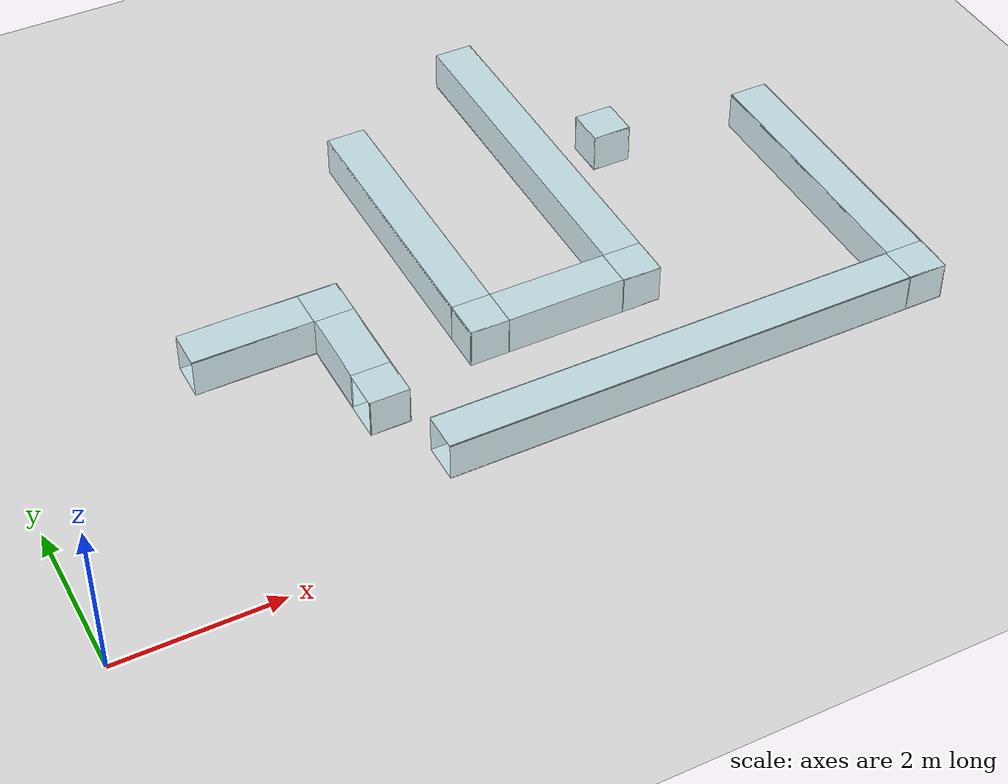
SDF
<sdf version="1.8">
 <world name="demo">
  <model name="ground_plane">
   <static>true</static>
   <link name="link">
    <collision name="collision">
     <geometry><plane><normal>0 0 1</normal><size>100 100</size></plane></geometry>
    </collision>
    <visual name="visual">
     <geometry><plane><normal>0 0 1</normal><size>100 100</size></plane></geometry>
     <material>
      <ambient>0.8 0.8 0.8 1</ambient>
      <diffuse>0.8 0.8 0.8 1</diffuse>
      <specular>0.8 0.8 0.8 1</specular>
     </material>
    </visual>
   </link>
  </model>
  <model name="ground_plane">
   <static>true</static>
   <link name="link">
    <collision name="collision">
     <geometry><plane><normal>0 0 1</normal><size>100 100</size></plane></geometry>
    </collision>
    <visual name="visual">
     <geometry><plane><normal>0 0 1</normal><size>100 100</size></plane></geometry>
     <material>
      <ambient>0.6 0.85 0.9 0.4</ambient>
      <diffuse>0.6 0.85 0.9 0.4</diffuse>
      <specular>0.1 0.1 0.1 1</specular>
      <emissive>0 0 0 1</emissive>
     </material>
    </visual>
   </link>
  </model>
  <model name="T4">
   <pose>4.000000 2.750000 0.250000 0.000000 0.000000 0.000000</pose>
   <static>true</static>
   <link name="link">
    <collision name="col_side_posX">
     <pose>0.245000 0.000000 0.000000 0.000000 0.000000 0.000000</pose>
     <geometry><box><size>0.010000 1.000000 0.500000</size></box></geometry>
    </collision>
    <visual name="vis_col_side_posX">
     <pose>0.245000 0.000000 0.000000 0.000000 0.000000 0.000000</pose>
     <geometry><box><size>0.010000 1.000000 0.500000</size></box></geometry>
     <material>
      <ambient>0.6 0.85 0.9 0.4</ambient>
      <diffuse>0.6 0.85 0.9 0.4</diffuse>
      <specular>0.1 0.1 0.1 1</specular>
      <emissive>0 0 0 1</emissive>
     </material>
    </visual>
    <collision name="col_side_negX">
     <pose>-0.245000 0.000000 0.000000 0.000000 0.000000 0.000000</pose>
     <geometry><box><size>0.010000 1.000000 0.500000</size></box></geometry>
    </collision>
    <visual name="vis_col_side_negX">
     <pose>-0.245000 0.000000 0.000000 0.000000 0.000000 0.000000</pose>
     <geometry><box><size>0.010000 1.000000 0.500000</size></box></geometry>
     <material>
      <ambient>0.6 0.85 0.9 0.4</ambient>
      <diffuse>0.6 0.85 0.9 0.4</diffuse>
      <specular>0.1 0.1 0.1 1</specular>
      <emissive>0 0 0 1</emissive>
     </material>
    </visual>
    <collision name="col_top">
     <pose>0.000000 0.000000 0.245000 0.000000 0.000000 0.000000</pose>
     <geometry><box><size>0.500000 1.000000 0.010000</size></box></geometry>
    </collision>
    <visual name="vis_col_top">
     <pose>0.000000 0.000000 0.245000 0.000000 0.000000 0.000000</pose>
     <geometry><box><size>0.500000 1.000000 0.010000</size></box></geometry>
     <material>
      <ambient>0.6 0.85 0.9 0.4</ambient>
      <diffuse>0.6 0.85 0.9 0.4</diffuse>
      <specular>0.1 0.1 0.1 1</specular>
      <emissive>0 0 0 1</emissive>
     </material>
    </visual>
    <collision name="col_bottom">
     <pose>0.000000 0.000000 -0.245000 0.000000 0.000000 0.000000</pose>
     <geometry><box><size>0.500000 1.000000 0.010000</size></box></geometry>
    </collision>
    <visual name="vis_col_bottom">
     <pose>0.000000 0.000000 -0.245000 0.000000 0.000000 0.000000</pose>
     <geometry><box><size>0.500000 1.000000 0.010000</size></box></geometry>
     <material>
      <ambient>0.6 0.85 0.9 0.4</ambient>
      <diffuse>0.6 0.85 0.9 0.4</diffuse>
      <specular>0.1 0.1 0.1 1</specular>
      <emissive>0 0 0 1</emissive>
     </material>
    </visual>
   </link>
  </model>
  <model name="T5">
   <pose>3.000000 3.500000 0.250000 0.000000 0.000000 0.000000</pose>
   <static>true</static>
   <link name="link">
    <collision name="col_side_posY">
     <pose>0.000000 0.245000 0.000000 0.000000 0.000000 0.000000</pose>
     <geometry><box><size>1.500000 0.010000 0.500000</size></box></geometry>
    </collision>
    <visual name="vis_col_side_posY">
     <pose>0.000000 0.245000 0.000000 0.000000 0.000000 0.000000</pose>
     <geometry><box><size>1.500000 0.010000 0.500000</size></box></geometry>
     <material>
      <ambient>0.6 0.85 0.9 0.4</ambient>
      <diffuse>0.6 0.85 0.9 0.4</diffuse>
      <specular>0.1 0.1 0.1 1</specular>
      <emissive>0 0 0 1</emissive>
     </material>
    </visual>
    <collision name="col_side_negY">
     <pose>0.000000 -0.245000 0.000000 0.000000 0.000000 0.000000</pose>
     <geometry><box><size>1.500000 0.010000 0.500000</size></box></geometry>
    </collision>
    <visual name="vis_col_side_negY">
     <pose>0.000000 -0.245000 0.000000 0.000000 0.000000 0.000000</pose>
     <geometry><box><size>1.500000 0.010000 0.500000</size></box></geometry>
     <material>
      <ambient>0.6 0.85 0.9 0.4</ambient>
      <diffuse>0.6 0.85 0.9 0.4</diffuse>
      <specular>0.1 0.1 0.1 1</specular>
      <emissive>0 0 0 1</emissive>
     </material>
    </visual>
    <collision name="col_top">
     <pose>0.000000 0.000000 0.245000 0.000000 0.000000 0.000000</pose>
     <geometry><box><size>1.500000 0.500000 0.010000</size></box></geometry>
    </collision>
    <visual name="vis_col_top">
     <pose>0.000000 0.000000 0.245000 0.000000 0.000000 0.000000</pose>
     <geometry><box><size>1.500000 0.500000 0.010000</size></box></geometry>
     <material>
      <ambient>0.6 0.85 0.9 0.4</ambient>
      <diffuse>0.6 0.85 0.9 0.4</diffuse>
      <specular>0.1 0.1 0.1 1</specular>
      <emissive>0 0 0 1</emissive>
     </material>
    </visual>
    <collision name="col_bottom">
     <pose>0.000000 0.000000 -0.245000 0.000000 0.000000 0.000000</pose>
     <geometry><box><size>1.500000 0.500000 0.010000</size></box></geometry>
    </collision>
    <visual name="vis_col_bottom">
     <pose>0.000000 0.000000 -0.245000 0.000000 0.000000 0.000000</pose>
     <geometry><box><size>1.500000 0.500000 0.010000</size></box></geometry>
     <material>
      <ambient>0.6 0.85 0.9 0.4</ambient>
      <diffuse>0.6 0.85 0.9 0.4</diffuse>
      <specular>0.1 0.1 0.1 1</specular>
      <emissive>0 0 0 1</emissive>
     </material>
    </visual>
   </link>
  </model>
  <model name="T16">
   <pose>5.500000 4.500000 0.250000 0.000000 0.000000 0.000000</pose>
   <static>true</static>
   <link name="link">
    <collision name="col_side_posX">
     <pose>0.245000 0.000000 0.000000 0.000000 0.000000 0.000000</pose>
     <geometry><box><size>0.010000 3.500000 0.500000</size></box></geometry>
    </collision>
    <visual name="vis_col_side_posX">
     <pose>0.245000 0.000000 0.000000 0.000000 0.000000 0.000000</pose>
     <geometry><box><size>0.010000 3.500000 0.500000</size></box></geometry>
     <material>
      <ambient>0.6 0.85 0.9 0.4</ambient>
      <diffuse>0.6 0.85 0.9 0.4</diffuse>
      <specular>0.1 0.1 0.1 1</specular>
      <emissive>0 0 0 1</emissive>
     </material>
    </visual>
    <collision name="col_side_negX">
     <pose>-0.245000 0.000000 0.000000 0.000000 0.000000 0.000000</pose>
     <geometry><box><size>0.010000 3.500000 0.500000</size></box></geometry>
    </collision>
    <visual name="vis_col_side_negX">
     <pose>-0.245000 0.000000 0.000000 0.000000 0.000000 0.000000</pose>
     <geometry><box><size>0.010000 3.500000 0.500000</size></box></geometry>
     <material>
      <ambient>0.6 0.85 0.9 0.4</ambient>
      <diffuse>0.6 0.85 0.9 0.4</diffuse>
      <specular>0.1 0.1 0.1 1</specular>
      <emissive>0 0 0 1</emissive>
     </material>
    </visual>
    <collision name="col_top">
     <pose>0.000000 0.000000 0.245000 0.000000 0.000000 0.000000</pose>
     <geometry><box><size>0.500000 3.500000 0.010000</size></box></geometry>
    </collision>
    <visual name="vis_col_top">
     <pose>0.000000 0.000000 0.245000 0.000000 0.000000 0.000000</pose>
     <geometry><box><size>0.500000 3.500000 0.010000</size></box></geometry>
     <material>
      <ambient>0.6 0.85 0.9 0.4</ambient>
      <diffuse>0.6 0.85 0.9 0.4</diffuse>
      <specular>0.1 0.1 0.1 1</specular>
      <emissive>0 0 0 1</emissive>
     </material>
    </visual>
    <collision name="col_bottom">
     <pose>0.000000 0.000000 -0.245000 0.000000 0.000000 0.000000</pose>
     <geometry><box><size>0.500000 3.500000 0.010000</size></box></geometry>
    </collision>
    <visual name="vis_col_bottom">
     <pose>0.000000 0.000000 -0.245000 0.000000 0.000000 0.000000</pose>
     <geometry><box><size>0.500000 3.500000 0.010000</size></box></geometry>
     <material>
      <ambient>0.6 0.85 0.9 0.4</ambient>
      <diffuse>0.6 0.85 0.9 0.4</diffuse>
      <specular>0.1 0.1 0.1 1</specular>
      <emissive>0 0 0 1</emissive>
     </material>
    </visual>
   </link>
  </model>
  <model name="T17">
   <pose>6.500000 2.500000 0.250000 0.000000 0.000000 0.000000</pose>
   <static>true</static>
   <link name="link">
    <collision name="col_side_posY">
     <pose>0.000000 0.245000 0.000000 0.000000 0.000000 0.000000</pose>
     <geometry><box><size>1.500000 0.010000 0.500000</size></box></geometry>
    </collision>
    <visual name="vis_col_side_posY">
     <pose>0.000000 0.245000 0.000000 0.000000 0.000000 0.000000</pose>
     <geometry><box><size>1.500000 0.010000 0.500000</size></box></geometry>
     <material>
      <ambient>0.6 0.85 0.9 0.4</ambient>
      <diffuse>0.6 0.85 0.9 0.4</diffuse>
      <specular>0.1 0.1 0.1 1</specular>
      <emissive>0 0 0 1</emissive>
     </material>
    </visual>
    <collision name="col_side_negY">
     <pose>0.000000 -0.245000 0.000000 0.000000 0.000000 0.000000</pose>
     <geometry><box><size>1.500000 0.010000 0.500000</size></box></geometry>
    </collision>
    <visual name="vis_col_side_negY">
     <pose>0.000000 -0.245000 0.000000 0.000000 0.000000 0.000000</pose>
     <geometry><box><size>1.500000 0.010000 0.500000</size></box></geometry>
     <material>
      <ambient>0.6 0.85 0.9 0.4</ambient>
      <diffuse>0.6 0.85 0.9 0.4</diffuse>
      <specular>0.1 0.1 0.1 1</specular>
      <emissive>0 0 0 1</emissive>
     </material>
    </visual>
    <collision name="col_top">
     <pose>0.000000 0.000000 0.245000 0.000000 0.000000 0.000000</pose>
     <geometry><box><size>1.500000 0.500000 0.010000</size></box></geometry>
    </collision>
    <visual name="vis_col_top">
     <pose>0.000000 0.000000 0.245000 0.000000 0.000000 0.000000</pose>
     <geometry><box><size>1.500000 0.500000 0.010000</size></box></geometry>
     <material>
      <ambient>0.6 0.85 0.9 0.4</ambient>
      <diffuse>0.6 0.85 0.9 0.4</diffuse>
      <specular>0.1 0.1 0.1 1</specular>
      <emissive>0 0 0 1</emissive>
     </material>
    </visual>
    <collision name="col_bottom">
     <pose>0.000000 0.000000 -0.245000 0.000000 0.000000 0.000000</pose>
     <geometry><box><size>1.500000 0.500000 0.010000</size></box></geometry>
    </collision>
    <visual name="vis_col_bottom">
     <pose>0.000000 0.000000 -0.245000 0.000000 0.000000 0.000000</pose>
     <geometry><box><size>1.500000 0.500000 0.010000</size></box></geometry>
     <material>
      <ambient>0.6 0.85 0.9 0.4</ambient>
      <diffuse>0.6 0.85 0.9 0.4</diffuse>
      <specular>0.1 0.1 0.1 1</specular>
      <emissive>0 0 0 1</emissive>
     </material>
    </visual>
   </link>
  </model>
  <model name="T18">
   <pose>7.500000 5.000000 0.250000 0.000000 0.000000 0.000000</pose>
   <static>true</static>
   <link name="link">
    <collision name="col_side_posX">
     <pose>0.245000 0.000000 0.000000 0.000000 0.000000 0.000000</pose>
     <geometry><box><size>0.010000 4.500000 0.500000</size></box></geometry>
    </collision>
    <visual name="vis_col_side_posX">
     <pose>0.245000 0.000000 0.000000 0.000000 0.000000 0.000000</pose>
     <geometry><box><size>0.010000 4.500000 0.500000</size></box></geometry>
     <material>
      <ambient>0.6 0.85 0.9 0.4</ambient>
      <diffuse>0.6 0.85 0.9 0.4</diffuse>
      <specular>0.1 0.1 0.1 1</specular>
      <emissive>0 0 0 1</emissive>
     </material>
    </visual>
    <collision name="col_side_negX">
     <pose>-0.245000 0.000000 0.000000 0.000000 0.000000 0.000000</pose>
     <geometry><box><size>0.010000 4.500000 0.500000</size></box></geometry>
    </collision>
    <visual name="vis_col_side_negX">
     <pose>-0.245000 0.000000 0.000000 0.000000 0.000000 0.000000</pose>
     <geometry><box><size>0.010000 4.500000 0.500000</size></box></geometry>
     <material>
      <ambient>0.6 0.85 0.9 0.4</ambient>
      <diffuse>0.6 0.85 0.9 0.4</diffuse>
      <specular>0.1 0.1 0.1 1</specular>
      <emissive>0 0 0 1</emissive>
     </material>
    </visual>
    <collision name="col_top">
     <pose>0.000000 0.000000 0.245000 0.000000 0.000000 0.000000</pose>
     <geometry><box><size>0.500000 4.500000 0.010000</size></box></geometry>
    </collision>
    <visual name="vis_col_top">
     <pose>0.000000 0.000000 0.245000 0.000000 0.000000 0.000000</pose>
     <geometry><box><size>0.500000 4.500000 0.010000</size></box></geometry>
     <material>
      <ambient>0.6 0.85 0.9 0.4</ambient>
      <diffuse>0.6 0.85 0.9 0.4</diffuse>
      <specular>0.1 0.1 0.1 1</specular>
      <emissive>0 0 0 1</emissive>
     </material>
    </visual>
    <collision name="col_bottom">
     <pose>0.000000 0.000000 -0.245000 0.000000 0.000000 0.000000</pose>
     <geometry><box><size>0.500000 4.500000 0.010000</size></box></geometry>
    </collision>
    <visual name="vis_col_bottom">
     <pose>0.000000 0.000000 -0.245000 0.000000 0.000000 0.000000</pose>
     <geometry><box><size>0.500000 4.500000 0.010000</size></box></geometry>
     <material>
      <ambient>0.6 0.85 0.9 0.4</ambient>
      <diffuse>0.6 0.85 0.9 0.4</diffuse>
      <specular>0.1 0.1 0.1 1</specular>
      <emissive>0 0 0 1</emissive>
     </material>
    </visual>
   </link>
  </model>
  <model name="T24">
   <pose>10.500000 3.000000 0.250000 0.000000 0.000000 0.000000</pose>
   <static>true</static>
   <link name="link">
    <collision name="col_side_posX">
     <pose>0.245000 0.000000 0.000000 0.000000 0.000000 0.000000</pose>
     <geometry><box><size>0.010000 3.500000 0.500000</size></box></geometry>
    </collision>
    <visual name="vis_col_side_posX">
     <pose>0.245000 0.000000 0.000000 0.000000 0.000000 0.000000</pose>
     <geometry><box><size>0.010000 3.500000 0.500000</size></box></geometry>
     <material>
      <ambient>0.6 0.85 0.9 0.4</ambient>
      <diffuse>0.6 0.85 0.9 0.4</diffuse>
      <specular>0.1 0.1 0.1 1</specular>
      <emissive>0 0 0 1</emissive>
     </material>
    </visual>
    <collision name="col_side_negX">
     <pose>-0.245000 0.000000 0.000000 0.000000 0.000000 0.000000</pose>
     <geometry><box><size>0.010000 3.500000 0.500000</size></box></geometry>
    </collision>
    <visual name="vis_col_side_negX">
     <pose>-0.245000 0.000000 0.000000 0.000000 0.000000 0.000000</pose>
     <geometry><box><size>0.010000 3.500000 0.500000</size></box></geometry>
     <material>
      <ambient>0.6 0.85 0.9 0.4</ambient>
      <diffuse>0.6 0.85 0.9 0.4</diffuse>
      <specular>0.1 0.1 0.1 1</specular>
      <emissive>0 0 0 1</emissive>
     </material>
    </visual>
    <collision name="col_top">
     <pose>0.000000 0.000000 0.245000 0.000000 0.000000 0.000000</pose>
     <geometry><box><size>0.500000 3.500000 0.010000</size></box></geometry>
    </collision>
    <visual name="vis_col_top">
     <pose>0.000000 0.000000 0.245000 0.000000 0.000000 0.000000</pose>
     <geometry><box><size>0.500000 3.500000 0.010000</size></box></geometry>
     <material>
      <ambient>0.6 0.85 0.9 0.4</ambient>
      <diffuse>0.6 0.85 0.9 0.4</diffuse>
      <specular>0.1 0.1 0.1 1</specular>
      <emissive>0 0 0 1</emissive>
     </material>
    </visual>
    <collision name="col_bottom">
     <pose>0.000000 0.000000 -0.245000 0.000000 0.000000 0.000000</pose>
     <geometry><box><size>0.500000 3.500000 0.010000</size></box></geometry>
    </collision>
    <visual name="vis_col_bottom">
     <pose>0.000000 0.000000 -0.245000 0.000000 0.000000 0.000000</pose>
     <geometry><box><size>0.500000 3.500000 0.010000</size></box></geometry>
     <material>
      <ambient>0.6 0.85 0.9 0.4</ambient>
      <diffuse>0.6 0.85 0.9 0.4</diffuse>
      <specular>0.1 0.1 0.1 1</specular>
      <emissive>0 0 0 1</emissive>
     </material>
    </visual>
   </link>
  </model>
  <model name="T25">
   <pose>7.250000 1.000000 0.250000 0.000000 0.000000 0.000000</pose>
   <static>true</static>
   <link name="link">
    <collision name="col_side_posY">
     <pose>0.000000 0.245000 0.000000 0.000000 0.000000 0.000000</pose>
     <geometry><box><size>6.000000 0.010000 0.500000</size></box></geometry>
    </collision>
    <visual name="vis_col_side_posY">
     <pose>0.000000 0.245000 0.000000 0.000000 0.000000 0.000000</pose>
     <geometry><box><size>6.000000 0.010000 0.500000</size></box></geometry>
     <material>
      <ambient>0.6 0.85 0.9 0.4</ambient>
      <diffuse>0.6 0.85 0.9 0.4</diffuse>
      <specular>0.1 0.1 0.1 1</specular>
      <emissive>0 0 0 1</emissive>
     </material>
    </visual>
    <collision name="col_side_negY">
     <pose>0.000000 -0.245000 0.000000 0.000000 0.000000 0.000000</pose>
     <geometry><box><size>6.000000 0.010000 0.500000</size></box></geometry>
    </collision>
    <visual name="vis_col_side_negY">
     <pose>0.000000 -0.245000 0.000000 0.000000 0.000000 0.000000</pose>
     <geometry><box><size>6.000000 0.010000 0.500000</size></box></geometry>
     <material>
      <ambient>0.6 0.85 0.9 0.4</ambient>
      <diffuse>0.6 0.85 0.9 0.4</diffuse>
      <specular>0.1 0.1 0.1 1</specular>
      <emissive>0 0 0 1</emissive>
     </material>
    </visual>
    <collision name="col_top">
     <pose>0.000000 0.000000 0.245000 0.000000 0.000000 0.000000</pose>
     <geometry><box><size>6.000000 0.500000 0.010000</size></box></geometry>
    </collision>
    <visual name="vis_col_top">
     <pose>0.000000 0.000000 0.245000 0.000000 0.000000 0.000000</pose>
     <geometry><box><size>6.000000 0.500000 0.010000</size></box></geometry>
     <material>
      <ambient>0.6 0.85 0.9 0.4</ambient>
      <diffuse>0.6 0.85 0.9 0.4</diffuse>
      <specular>0.1 0.1 0.1 1</specular>
      <emissive>0 0 0 1</emissive>
     </material>
    </visual>
    <collision name="col_bottom">
     <pose>0.000000 0.000000 -0.245000 0.000000 0.000000 0.000000</pose>
     <geometry><box><size>6.000000 0.500000 0.010000</size></box></geometry>
    </collision>
    <visual name="vis_col_bottom">
     <pose>0.000000 0.000000 -0.245000 0.000000 0.000000 0.000000</pose>
     <geometry><box><size>6.000000 0.500000 0.010000</size></box></geometry>
     <material>
      <ambient>0.6 0.85 0.9 0.4</ambient>
      <diffuse>0.6 0.85 0.9 0.4</diffuse>
      <specular>0.1 0.1 0.1 1</specular>
      <emissive>0 0 0 1</emissive>
     </material>
    </visual>
   </link>
  </model>
  <model name="C3">
   <pose>4.000000 2.000000 0.250000 0.000000 0.000000 0.000000</pose>
   <static>true</static>
   <link name="link">
    <collision name="wall_posX">
     <pose>0.245000 0.000000 0.000000 0.000000 0.000000 0.000000</pose>
     <geometry><box><size>0.010000 0.500000 0.500000</size></box></geometry>
    </collision>
    <visual name="vis_wall_posX">
     <pose>0.245000 0.000000 0.000000 0.000000 0.000000 0.000000</pose>
     <geometry><box><size>0.010000 0.500000 0.500000</size></box></geometry>
     <material>
      <ambient>0.6 0.85 0.9 0.4</ambient>
      <diffuse>0.6 0.85 0.9 0.4</diffuse>
      <specular>0.1 0.1 0.1 1</specular>
      <emissive>0 0 0 1</emissive>
     </material>
    </visual>
    <collision name="wall_negY">
     <pose>0.000000 -0.245000 0.000000 0.000000 0.000000 0.000000</pose>
     <geometry><box><size>0.500000 0.010000 0.500000</size></box></geometry>
    </collision>
    <visual name="vis_wall_negY">
     <pose>0.000000 -0.245000 0.000000 0.000000 0.000000 0.000000</pose>
     <geometry><box><size>0.500000 0.010000 0.500000</size></box></geometry>
     <material>
      <ambient>0.6 0.85 0.9 0.4</ambient>
      <diffuse>0.6 0.85 0.9 0.4</diffuse>
      <specular>0.1 0.1 0.1 1</specular>
      <emissive>0 0 0 1</emissive>
     </material>
    </visual>
    <collision name="wall_posZ">
     <pose>0.000000 0.000000 0.245000 0.000000 0.000000 0.000000</pose>
     <geometry><box><size>0.500000 0.500000 0.010000</size></box></geometry>
    </collision>
    <visual name="vis_wall_posZ">
     <pose>0.000000 0.000000 0.245000 0.000000 0.000000 0.000000</pose>
     <geometry><box><size>0.500000 0.500000 0.010000</size></box></geometry>
     <material>
      <ambient>0.6 0.85 0.9 0.4</ambient>
      <diffuse>0.6 0.85 0.9 0.4</diffuse>
      <specular>0.1 0.1 0.1 1</specular>
      <emissive>0 0 0 1</emissive>
     </material>
    </visual>
    <collision name="wall_negZ">
     <pose>0.000000 0.000000 -0.245000 0.000000 0.000000 0.000000</pose>
     <geometry><box><size>0.500000 0.500000 0.010000</size></box></geometry>
    </collision>
    <visual name="vis_wall_negZ">
     <pose>0.000000 0.000000 -0.245000 0.000000 0.000000 0.000000</pose>
     <geometry><box><size>0.500000 0.500000 0.010000</size></box></geometry>
     <material>
      <ambient>0.6 0.85 0.9 0.4</ambient>
      <diffuse>0.6 0.85 0.9 0.4</diffuse>
      <specular>0.1 0.1 0.1 1</specular>
      <emissive>0 0 0 1</emissive>
     </material>
    </visual>
    <collision name="corner_pXpY">
     <pose>0.245000 0.245000 0.000000 0.000000 0.000000 0.000000</pose>
     <geometry><box><size>0.010000 0.010000 0.500000</size></box></geometry>
    </collision>
    <visual name="vis_corner_pXpY">
     <pose>0.245000 0.245000 0.000000 0.000000 0.000000 0.000000</pose>
     <geometry><box><size>0.010000 0.010000 0.500000</size></box></geometry>
     <material>
      <ambient>0.6 0.85 0.9 0.4</ambient>
      <diffuse>0.6 0.85 0.9 0.4</diffuse>
      <specular>0.1 0.1 0.1 1</specular>
      <emissive>0 0 0 1</emissive>
     </material>
    </visual>
    <collision name="corner_mXpY">
     <pose>-0.245000 0.245000 0.000000 0.000000 0.000000 0.000000</pose>
     <geometry><box><size>0.010000 0.010000 0.500000</size></box></geometry>
    </collision>
    <visual name="vis_corner_mXpY">
     <pose>-0.245000 0.245000 0.000000 0.000000 0.000000 0.000000</pose>
     <geometry><box><size>0.010000 0.010000 0.500000</size></box></geometry>
     <material>
      <ambient>0.6 0.85 0.9 0.4</ambient>
      <diffuse>0.6 0.85 0.9 0.4</diffuse>
      <specular>0.1 0.1 0.1 1</specular>
      <emissive>0 0 0 1</emissive>
     </material>
    </visual>
    <collision name="corner_mXmY">
     <pose>-0.245000 -0.245000 0.000000 0.000000 0.000000 0.000000</pose>
     <geometry><box><size>0.010000 0.010000 0.500000</size></box></geometry>
    </collision>
    <visual name="vis_corner_mXmY">
     <pose>-0.245000 -0.245000 0.000000 0.000000 0.000000 0.000000</pose>
     <geometry><box><size>0.010000 0.010000 0.500000</size></box></geometry>
     <material>
      <ambient>0.6 0.85 0.9 0.4</ambient>
      <diffuse>0.6 0.85 0.9 0.4</diffuse>
      <specular>0.1 0.1 0.1 1</specular>
      <emissive>0 0 0 1</emissive>
     </material>
    </visual>
   </link>
  </model>
  <model name="C4">
   <pose>4.000000 3.500000 0.250000 0.000000 0.000000 0.000000</pose>
   <static>true</static>
   <link name="link">
    <collision name="wall_posX">
     <pose>0.245000 0.000000 0.000000 0.000000 0.000000 0.000000</pose>
     <geometry><box><size>0.010000 0.500000 0.500000</size></box></geometry>
    </collision>
    <visual name="vis_wall_posX">
     <pose>0.245000 0.000000 0.000000 0.000000 0.000000 0.000000</pose>
     <geometry><box><size>0.010000 0.500000 0.500000</size></box></geometry>
     <material>
      <ambient>0.6 0.85 0.9 0.4</ambient>
      <diffuse>0.6 0.85 0.9 0.4</diffuse>
      <specular>0.1 0.1 0.1 1</specular>
      <emissive>0 0 0 1</emissive>
     </material>
    </visual>
    <collision name="wall_posY">
     <pose>0.000000 0.245000 0.000000 0.000000 0.000000 0.000000</pose>
     <geometry><box><size>0.500000 0.010000 0.500000</size></box></geometry>
    </collision>
    <visual name="vis_wall_posY">
     <pose>0.000000 0.245000 0.000000 0.000000 0.000000 0.000000</pose>
     <geometry><box><size>0.500000 0.010000 0.500000</size></box></geometry>
     <material>
      <ambient>0.6 0.85 0.9 0.4</ambient>
      <diffuse>0.6 0.85 0.9 0.4</diffuse>
      <specular>0.1 0.1 0.1 1</specular>
      <emissive>0 0 0 1</emissive>
     </material>
    </visual>
    <collision name="wall_posZ">
     <pose>0.000000 0.000000 0.245000 0.000000 0.000000 0.000000</pose>
     <geometry><box><size>0.500000 0.500000 0.010000</size></box></geometry>
    </collision>
    <visual name="vis_wall_posZ">
     <pose>0.000000 0.000000 0.245000 0.000000 0.000000 0.000000</pose>
     <geometry><box><size>0.500000 0.500000 0.010000</size></box></geometry>
     <material>
      <ambient>0.6 0.85 0.9 0.4</ambient>
      <diffuse>0.6 0.85 0.9 0.4</diffuse>
      <specular>0.1 0.1 0.1 1</specular>
      <emissive>0 0 0 1</emissive>
     </material>
    </visual>
    <collision name="wall_negZ">
     <pose>0.000000 0.000000 -0.245000 0.000000 0.000000 0.000000</pose>
     <geometry><box><size>0.500000 0.500000 0.010000</size></box></geometry>
    </collision>
    <visual name="vis_wall_negZ">
     <pose>0.000000 0.000000 -0.245000 0.000000 0.000000 0.000000</pose>
     <geometry><box><size>0.500000 0.500000 0.010000</size></box></geometry>
     <material>
      <ambient>0.6 0.85 0.9 0.4</ambient>
      <diffuse>0.6 0.85 0.9 0.4</diffuse>
      <specular>0.1 0.1 0.1 1</specular>
      <emissive>0 0 0 1</emissive>
     </material>
    </visual>
    <collision name="corner_pXmY">
     <pose>0.245000 -0.245000 0.000000 0.000000 0.000000 0.000000</pose>
     <geometry><box><size>0.010000 0.010000 0.500000</size></box></geometry>
    </collision>
    <visual name="vis_corner_pXmY">
     <pose>0.245000 -0.245000 0.000000 0.000000 0.000000 0.000000</pose>
     <geometry><box><size>0.010000 0.010000 0.500000</size></box></geometry>
     <material>
      <ambient>0.6 0.85 0.9 0.4</ambient>
      <diffuse>0.6 0.85 0.9 0.4</diffuse>
      <specular>0.1 0.1 0.1 1</specular>
      <emissive>0 0 0 1</emissive>
     </material>
    </visual>
    <collision name="corner_mXpY">
     <pose>-0.245000 0.245000 0.000000 0.000000 0.000000 0.000000</pose>
     <geometry><box><size>0.010000 0.010000 0.500000</size></box></geometry>
    </collision>
    <visual name="vis_corner_mXpY">
     <pose>-0.245000 0.245000 0.000000 0.000000 0.000000 0.000000</pose>
     <geometry><box><size>0.010000 0.010000 0.500000</size></box></geometry>
     <material>
      <ambient>0.6 0.85 0.9 0.4</ambient>
      <diffuse>0.6 0.85 0.9 0.4</diffuse>
      <specular>0.1 0.1 0.1 1</specular>
      <emissive>0 0 0 1</emissive>
     </material>
    </visual>
    <collision name="corner_mXmY">
     <pose>-0.245000 -0.245000 0.000000 0.000000 0.000000 0.000000</pose>
     <geometry><box><size>0.010000 0.010000 0.500000</size></box></geometry>
    </collision>
    <visual name="vis_corner_mXmY">
     <pose>-0.245000 -0.245000 0.000000 0.000000 0.000000 0.000000</pose>
     <geometry><box><size>0.010000 0.010000 0.500000</size></box></geometry>
     <material>
      <ambient>0.6 0.85 0.9 0.4</ambient>
      <diffuse>0.6 0.85 0.9 0.4</diffuse>
      <specular>0.1 0.1 0.1 1</specular>
      <emissive>0 0 0 1</emissive>
     </material>
    </visual>
   </link>
  </model>
  <model name="C16">
   <pose>5.500000 2.500000 0.250000 0.000000 0.000000 0.000000</pose>
   <static>true</static>
   <link name="link">
    <collision name="wall_negX">
     <pose>-0.245000 0.000000 0.000000 0.000000 0.000000 0.000000</pose>
     <geometry><box><size>0.010000 0.500000 0.500000</size></box></geometry>
    </collision>
    <visual name="vis_wall_negX">
     <pose>-0.245000 0.000000 0.000000 0.000000 0.000000 0.000000</pose>
     <geometry><box><size>0.010000 0.500000 0.500000</size></box></geometry>
     <material>
      <ambient>0.6 0.85 0.9 0.4</ambient>
      <diffuse>0.6 0.85 0.9 0.4</diffuse>
      <specular>0.1 0.1 0.1 1</specular>
      <emissive>0 0 0 1</emissive>
     </material>
    </visual>
    <collision name="wall_negY">
     <pose>0.000000 -0.245000 0.000000 0.000000 0.000000 0.000000</pose>
     <geometry><box><size>0.500000 0.010000 0.500000</size></box></geometry>
    </collision>
    <visual name="vis_wall_negY">
     <pose>0.000000 -0.245000 0.000000 0.000000 0.000000 0.000000</pose>
     <geometry><box><size>0.500000 0.010000 0.500000</size></box></geometry>
     <material>
      <ambient>0.6 0.85 0.9 0.4</ambient>
      <diffuse>0.6 0.85 0.9 0.4</diffuse>
      <specular>0.1 0.1 0.1 1</specular>
      <emissive>0 0 0 1</emissive>
     </material>
    </visual>
    <collision name="wall_posZ">
     <pose>0.000000 0.000000 0.245000 0.000000 0.000000 0.000000</pose>
     <geometry><box><size>0.500000 0.500000 0.010000</size></box></geometry>
    </collision>
    <visual name="vis_wall_posZ">
     <pose>0.000000 0.000000 0.245000 0.000000 0.000000 0.000000</pose>
     <geometry><box><size>0.500000 0.500000 0.010000</size></box></geometry>
     <material>
      <ambient>0.6 0.85 0.9 0.4</ambient>
      <diffuse>0.6 0.85 0.9 0.4</diffuse>
      <specular>0.1 0.1 0.1 1</specular>
      <emissive>0 0 0 1</emissive>
     </material>
    </visual>
    <collision name="wall_negZ">
     <pose>0.000000 0.000000 -0.245000 0.000000 0.000000 0.000000</pose>
     <geometry><box><size>0.500000 0.500000 0.010000</size></box></geometry>
    </collision>
    <visual name="vis_wall_negZ">
     <pose>0.000000 0.000000 -0.245000 0.000000 0.000000 0.000000</pose>
     <geometry><box><size>0.500000 0.500000 0.010000</size></box></geometry>
     <material>
      <ambient>0.6 0.85 0.9 0.4</ambient>
      <diffuse>0.6 0.85 0.9 0.4</diffuse>
      <specular>0.1 0.1 0.1 1</specular>
      <emissive>0 0 0 1</emissive>
     </material>
    </visual>
    <collision name="corner_pXpY">
     <pose>0.245000 0.245000 0.000000 0.000000 0.000000 0.000000</pose>
     <geometry><box><size>0.010000 0.010000 0.500000</size></box></geometry>
    </collision>
    <visual name="vis_corner_pXpY">
     <pose>0.245000 0.245000 0.000000 0.000000 0.000000 0.000000</pose>
     <geometry><box><size>0.010000 0.010000 0.500000</size></box></geometry>
     <material>
      <ambient>0.6 0.85 0.9 0.4</ambient>
      <diffuse>0.6 0.85 0.9 0.4</diffuse>
      <specular>0.1 0.1 0.1 1</specular>
      <emissive>0 0 0 1</emissive>
     </material>
    </visual>
    <collision name="corner_pXmY">
     <pose>0.245000 -0.245000 0.000000 0.000000 0.000000 0.000000</pose>
     <geometry><box><size>0.010000 0.010000 0.500000</size></box></geometry>
    </collision>
    <visual name="vis_corner_pXmY">
     <pose>0.245000 -0.245000 0.000000 0.000000 0.000000 0.000000</pose>
     <geometry><box><size>0.010000 0.010000 0.500000</size></box></geometry>
     <material>
      <ambient>0.6 0.85 0.9 0.4</ambient>
      <diffuse>0.6 0.85 0.9 0.4</diffuse>
      <specular>0.1 0.1 0.1 1</specular>
      <emissive>0 0 0 1</emissive>
     </material>
    </visual>
    <collision name="corner_mXpY">
     <pose>-0.245000 0.245000 0.000000 0.000000 0.000000 0.000000</pose>
     <geometry><box><size>0.010000 0.010000 0.500000</size></box></geometry>
    </collision>
    <visual name="vis_corner_mXpY">
     <pose>-0.245000 0.245000 0.000000 0.000000 0.000000 0.000000</pose>
     <geometry><box><size>0.010000 0.010000 0.500000</size></box></geometry>
     <material>
      <ambient>0.6 0.85 0.9 0.4</ambient>
      <diffuse>0.6 0.85 0.9 0.4</diffuse>
      <specular>0.1 0.1 0.1 1</specular>
      <emissive>0 0 0 1</emissive>
     </material>
    </visual>
   </link>
  </model>
  <model name="C17">
   <pose>7.500000 2.500000 0.250000 0.000000 0.000000 0.000000</pose>
   <static>true</static>
   <link name="link">
    <collision name="wall_posX">
     <pose>0.245000 0.000000 0.000000 0.000000 0.000000 0.000000</pose>
     <geometry><box><size>0.010000 0.500000 0.500000</size></box></geometry>
    </collision>
    <visual name="vis_wall_posX">
     <pose>0.245000 0.000000 0.000000 0.000000 0.000000 0.000000</pose>
     <geometry><box><size>0.010000 0.500000 0.500000</size></box></geometry>
     <material>
      <ambient>0.6 0.85 0.9 0.4</ambient>
      <diffuse>0.6 0.85 0.9 0.4</diffuse>
      <specular>0.1 0.1 0.1 1</specular>
      <emissive>0 0 0 1</emissive>
     </material>
    </visual>
    <collision name="wall_negY">
     <pose>0.000000 -0.245000 0.000000 0.000000 0.000000 0.000000</pose>
     <geometry><box><size>0.500000 0.010000 0.500000</size></box></geometry>
    </collision>
    <visual name="vis_wall_negY">
     <pose>0.000000 -0.245000 0.000000 0.000000 0.000000 0.000000</pose>
     <geometry><box><size>0.500000 0.010000 0.500000</size></box></geometry>
     <material>
      <ambient>0.6 0.85 0.9 0.4</ambient>
      <diffuse>0.6 0.85 0.9 0.4</diffuse>
      <specular>0.1 0.1 0.1 1</specular>
      <emissive>0 0 0 1</emissive>
     </material>
    </visual>
    <collision name="wall_posZ">
     <pose>0.000000 0.000000 0.245000 0.000000 0.000000 0.000000</pose>
     <geometry><box><size>0.500000 0.500000 0.010000</size></box></geometry>
    </collision>
    <visual name="vis_wall_posZ">
     <pose>0.000000 0.000000 0.245000 0.000000 0.000000 0.000000</pose>
     <geometry><box><size>0.500000 0.500000 0.010000</size></box></geometry>
     <material>
      <ambient>0.6 0.85 0.9 0.4</ambient>
      <diffuse>0.6 0.85 0.9 0.4</diffuse>
      <specular>0.1 0.1 0.1 1</specular>
      <emissive>0 0 0 1</emissive>
     </material>
    </visual>
    <collision name="wall_negZ">
     <pose>0.000000 0.000000 -0.245000 0.000000 0.000000 0.000000</pose>
     <geometry><box><size>0.500000 0.500000 0.010000</size></box></geometry>
    </collision>
    <visual name="vis_wall_negZ">
     <pose>0.000000 0.000000 -0.245000 0.000000 0.000000 0.000000</pose>
     <geometry><box><size>0.500000 0.500000 0.010000</size></box></geometry>
     <material>
      <ambient>0.6 0.85 0.9 0.4</ambient>
      <diffuse>0.6 0.85 0.9 0.4</diffuse>
      <specular>0.1 0.1 0.1 1</specular>
      <emissive>0 0 0 1</emissive>
     </material>
    </visual>
    <collision name="corner_pXpY">
     <pose>0.245000 0.245000 0.000000 0.000000 0.000000 0.000000</pose>
     <geometry><box><size>0.010000 0.010000 0.500000</size></box></geometry>
    </collision>
    <visual name="vis_corner_pXpY">
     <pose>0.245000 0.245000 0.000000 0.000000 0.000000 0.000000</pose>
     <geometry><box><size>0.010000 0.010000 0.500000</size></box></geometry>
     <material>
      <ambient>0.6 0.85 0.9 0.4</ambient>
      <diffuse>0.6 0.85 0.9 0.4</diffuse>
      <specular>0.1 0.1 0.1 1</specular>
      <emissive>0 0 0 1</emissive>
     </material>
    </visual>
    <collision name="corner_mXpY">
     <pose>-0.245000 0.245000 0.000000 0.000000 0.000000 0.000000</pose>
     <geometry><box><size>0.010000 0.010000 0.500000</size></box></geometry>
    </collision>
    <visual name="vis_corner_mXpY">
     <pose>-0.245000 0.245000 0.000000 0.000000 0.000000 0.000000</pose>
     <geometry><box><size>0.010000 0.010000 0.500000</size></box></geometry>
     <material>
      <ambient>0.6 0.85 0.9 0.4</ambient>
      <diffuse>0.6 0.85 0.9 0.4</diffuse>
      <specular>0.1 0.1 0.1 1</specular>
      <emissive>0 0 0 1</emissive>
     </material>
    </visual>
    <collision name="corner_mXmY">
     <pose>-0.245000 -0.245000 0.000000 0.000000 0.000000 0.000000</pose>
     <geometry><box><size>0.010000 0.010000 0.500000</size></box></geometry>
    </collision>
    <visual name="vis_corner_mXmY">
     <pose>-0.245000 -0.245000 0.000000 0.000000 0.000000 0.000000</pose>
     <geometry><box><size>0.010000 0.010000 0.500000</size></box></geometry>
     <material>
      <ambient>0.6 0.85 0.9 0.4</ambient>
      <diffuse>0.6 0.85 0.9 0.4</diffuse>
      <specular>0.1 0.1 0.1 1</specular>
      <emissive>0 0 0 1</emissive>
     </material>
    </visual>
   </link>
  </model>
  <model name="C22">
   <pose>8.500000 5.000000 0.250000 0.000000 0.000000 0.000000</pose>
   <static>true</static>
   <link name="link">
    <collision name="wall_negX">
     <pose>-0.245000 0.000000 0.000000 0.000000 0.000000 0.000000</pose>
     <geometry><box><size>0.010000 0.500000 0.500000</size></box></geometry>
    </collision>
    <visual name="vis_wall_negX">
     <pose>-0.245000 0.000000 0.000000 0.000000 0.000000 0.000000</pose>
     <geometry><box><size>0.010000 0.500000 0.500000</size></box></geometry>
     <material>
      <ambient>0.6 0.85 0.9 0.4</ambient>
      <diffuse>0.6 0.85 0.9 0.4</diffuse>
      <specular>0.1 0.1 0.1 1</specular>
      <emissive>0 0 0 1</emissive>
     </material>
    </visual>
    <collision name="wall_negY">
     <pose>0.000000 -0.245000 0.000000 0.000000 0.000000 0.000000</pose>
     <geometry><box><size>0.500000 0.010000 0.500000</size></box></geometry>
    </collision>
    <visual name="vis_wall_negY">
     <pose>0.000000 -0.245000 0.000000 0.000000 0.000000 0.000000</pose>
     <geometry><box><size>0.500000 0.010000 0.500000</size></box></geometry>
     <material>
      <ambient>0.6 0.85 0.9 0.4</ambient>
      <diffuse>0.6 0.85 0.9 0.4</diffuse>
      <specular>0.1 0.1 0.1 1</specular>
      <emissive>0 0 0 1</emissive>
     </material>
    </visual>
    <collision name="wall_posZ">
     <pose>0.000000 0.000000 0.245000 0.000000 0.000000 0.000000</pose>
     <geometry><box><size>0.500000 0.500000 0.010000</size></box></geometry>
    </collision>
    <visual name="vis_wall_posZ">
     <pose>0.000000 0.000000 0.245000 0.000000 0.000000 0.000000</pose>
     <geometry><box><size>0.500000 0.500000 0.010000</size></box></geometry>
     <material>
      <ambient>0.6 0.85 0.9 0.4</ambient>
      <diffuse>0.6 0.85 0.9 0.4</diffuse>
      <specular>0.1 0.1 0.1 1</specular>
      <emissive>0 0 0 1</emissive>
     </material>
    </visual>
    <collision name="wall_negZ">
     <pose>0.000000 0.000000 -0.245000 0.000000 0.000000 0.000000</pose>
     <geometry><box><size>0.500000 0.500000 0.010000</size></box></geometry>
    </collision>
    <visual name="vis_wall_negZ">
     <pose>0.000000 0.000000 -0.245000 0.000000 0.000000 0.000000</pose>
     <geometry><box><size>0.500000 0.500000 0.010000</size></box></geometry>
     <material>
      <ambient>0.6 0.85 0.9 0.4</ambient>
      <diffuse>0.6 0.85 0.9 0.4</diffuse>
      <specular>0.1 0.1 0.1 1</specular>
      <emissive>0 0 0 1</emissive>
     </material>
    </visual>
    <collision name="corner_pXpY">
     <pose>0.245000 0.245000 0.000000 0.000000 0.000000 0.000000</pose>
     <geometry><box><size>0.010000 0.010000 0.500000</size></box></geometry>
    </collision>
    <visual name="vis_corner_pXpY">
     <pose>0.245000 0.245000 0.000000 0.000000 0.000000 0.000000</pose>
     <geometry><box><size>0.010000 0.010000 0.500000</size></box></geometry>
     <material>
      <ambient>0.6 0.85 0.9 0.4</ambient>
      <diffuse>0.6 0.85 0.9 0.4</diffuse>
      <specular>0.1 0.1 0.1 1</specular>
      <emissive>0 0 0 1</emissive>
     </material>
    </visual>
    <collision name="corner_pXmY">
     <pose>0.245000 -0.245000 0.000000 0.000000 0.000000 0.000000</pose>
     <geometry><box><size>0.010000 0.010000 0.500000</size></box></geometry>
    </collision>
    <visual name="vis_corner_pXmY">
     <pose>0.245000 -0.245000 0.000000 0.000000 0.000000 0.000000</pose>
     <geometry><box><size>0.010000 0.010000 0.500000</size></box></geometry>
     <material>
      <ambient>0.6 0.85 0.9 0.4</ambient>
      <diffuse>0.6 0.85 0.9 0.4</diffuse>
      <specular>0.1 0.1 0.1 1</specular>
      <emissive>0 0 0 1</emissive>
     </material>
    </visual>
    <collision name="corner_mXpY">
     <pose>-0.245000 0.245000 0.000000 0.000000 0.000000 0.000000</pose>
     <geometry><box><size>0.010000 0.010000 0.500000</size></box></geometry>
    </collision>
    <visual name="vis_corner_mXpY">
     <pose>-0.245000 0.245000 0.000000 0.000000 0.000000 0.000000</pose>
     <geometry><box><size>0.010000 0.010000 0.500000</size></box></geometry>
     <material>
      <ambient>0.6 0.85 0.9 0.4</ambient>
      <diffuse>0.6 0.85 0.9 0.4</diffuse>
      <specular>0.1 0.1 0.1 1</specular>
      <emissive>0 0 0 1</emissive>
     </material>
    </visual>
   </link>
  </model>
  <model name="C24">
   <pose>10.500000 1.000000 0.250000 0.000000 0.000000 0.000000</pose>
   <static>true</static>
   <link name="link">
    <collision name="wall_posX">
     <pose>0.245000 0.000000 0.000000 0.000000 0.000000 0.000000</pose>
     <geometry><box><size>0.010000 0.500000 0.500000</size></box></geometry>
    </collision>
    <visual name="vis_wall_posX">
     <pose>0.245000 0.000000 0.000000 0.000000 0.000000 0.000000</pose>
     <geometry><box><size>0.010000 0.500000 0.500000</size></box></geometry>
     <material>
      <ambient>0.6 0.85 0.9 0.4</ambient>
      <diffuse>0.6 0.85 0.9 0.4</diffuse>
      <specular>0.1 0.1 0.1 1</specular>
      <emissive>0 0 0 1</emissive>
     </material>
    </visual>
    <collision name="wall_negY">
     <pose>0.000000 -0.245000 0.000000 0.000000 0.000000 0.000000</pose>
     <geometry><box><size>0.500000 0.010000 0.500000</size></box></geometry>
    </collision>
    <visual name="vis_wall_negY">
     <pose>0.000000 -0.245000 0.000000 0.000000 0.000000 0.000000</pose>
     <geometry><box><size>0.500000 0.010000 0.500000</size></box></geometry>
     <material>
      <ambient>0.6 0.85 0.9 0.4</ambient>
      <diffuse>0.6 0.85 0.9 0.4</diffuse>
      <specular>0.1 0.1 0.1 1</specular>
      <emissive>0 0 0 1</emissive>
     </material>
    </visual>
    <collision name="wall_posZ">
     <pose>0.000000 0.000000 0.245000 0.000000 0.000000 0.000000</pose>
     <geometry><box><size>0.500000 0.500000 0.010000</size></box></geometry>
    </collision>
    <visual name="vis_wall_posZ">
     <pose>0.000000 0.000000 0.245000 0.000000 0.000000 0.000000</pose>
     <geometry><box><size>0.500000 0.500000 0.010000</size></box></geometry>
     <material>
      <ambient>0.6 0.85 0.9 0.4</ambient>
      <diffuse>0.6 0.85 0.9 0.4</diffuse>
      <specular>0.1 0.1 0.1 1</specular>
      <emissive>0 0 0 1</emissive>
     </material>
    </visual>
    <collision name="wall_negZ">
     <pose>0.000000 0.000000 -0.245000 0.000000 0.000000 0.000000</pose>
     <geometry><box><size>0.500000 0.500000 0.010000</size></box></geometry>
    </collision>
    <visual name="vis_wall_negZ">
     <pose>0.000000 0.000000 -0.245000 0.000000 0.000000 0.000000</pose>
     <geometry><box><size>0.500000 0.500000 0.010000</size></box></geometry>
     <material>
      <ambient>0.6 0.85 0.9 0.4</ambient>
      <diffuse>0.6 0.85 0.9 0.4</diffuse>
      <specular>0.1 0.1 0.1 1</specular>
      <emissive>0 0 0 1</emissive>
     </material>
    </visual>
    <collision name="corner_pXpY">
     <pose>0.245000 0.245000 0.000000 0.000000 0.000000 0.000000</pose>
     <geometry><box><size>0.010000 0.010000 0.500000</size></box></geometry>
    </collision>
    <visual name="vis_corner_pXpY">
     <pose>0.245000 0.245000 0.000000 0.000000 0.000000 0.000000</pose>
     <geometry><box><size>0.010000 0.010000 0.500000</size></box></geometry>
     <material>
      <ambient>0.6 0.85 0.9 0.4</ambient>
      <diffuse>0.6 0.85 0.9 0.4</diffuse>
      <specular>0.1 0.1 0.1 1</specular>
      <emissive>0 0 0 1</emissive>
     </material>
    </visual>
    <collision name="corner_mXpY">
     <pose>-0.245000 0.245000 0.000000 0.000000 0.000000 0.000000</pose>
     <geometry><box><size>0.010000 0.010000 0.500000</size></box></geometry>
    </collision>
    <visual name="vis_corner_mXpY">
     <pose>-0.245000 0.245000 0.000000 0.000000 0.000000 0.000000</pose>
     <geometry><box><size>0.010000 0.010000 0.500000</size></box></geometry>
     <material>
      <ambient>0.6 0.85 0.9 0.4</ambient>
      <diffuse>0.6 0.85 0.9 0.4</diffuse>
      <specular>0.1 0.1 0.1 1</specular>
      <emissive>0 0 0 1</emissive>
     </material>
    </visual>
    <collision name="corner_mXmY">
     <pose>-0.245000 -0.245000 0.000000 0.000000 0.000000 0.000000</pose>
     <geometry><box><size>0.010000 0.010000 0.500000</size></box></geometry>
    </collision>
    <visual name="vis_corner_mXmY">
     <pose>-0.245000 -0.245000 0.000000 0.000000 0.000000 0.000000</pose>
     <geometry><box><size>0.010000 0.010000 0.500000</size></box></geometry>
     <material>
      <ambient>0.6 0.85 0.9 0.4</ambient>
      <diffuse>0.6 0.85 0.9 0.4</diffuse>
      <specular>0.1 0.1 0.1 1</specular>
      <emissive>0 0 0 1</emissive>
     </material>
    </visual>
   </link>
  </model>
 </world>
</sdf>
